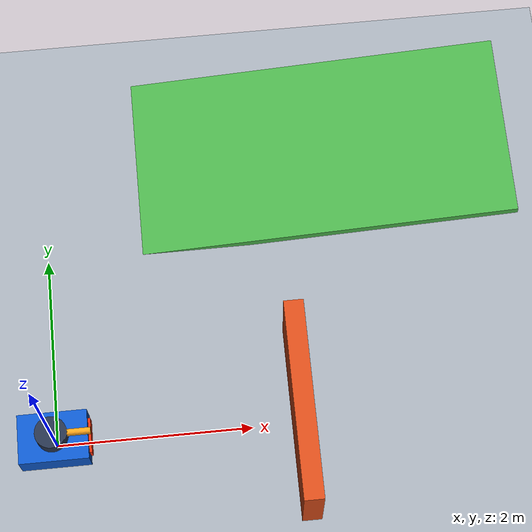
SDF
<?xml version='1.0' encoding='utf-8'?>
<sdf version="1.8">
  <world name="sentry_physics">
    <physics name="fixed_step" type="ignored">
      <max_step_size>.002</max_step_size>
      <real_time_factor>1</real_time_factor>
    </physics>
    <plugin filename="ignition-gazebo-physics-system" name="ignition::gazebo::systems::Physics" />
    <plugin filename="ignition-gazebo-user-commands-system" name="ignition::gazebo::systems::UserCommands" />
    <plugin filename="ignition-gazebo-scene-broadcaster-system" name="ignition::gazebo::systems::SceneBroadcaster" />
    <scene>
      <ambient>0.65 0.65 0.65 1</ambient>
      <background>0.82 0.86 0.9 1</background>
      <shadows>false</shadows>
    </scene>
    <light name="sun" type="directional">
      <pose>0 0 10 0 0 0</pose>
      <diffuse>0.8 0.8 0.8 1</diffuse>
      <specular>0.1 0.1 0.1 1</specular>
      <direction>-0.3 0.2 -1</direction>
      <cast_shadows>false</cast_shadows>
    </light>
    <gui fullscreen="false">
      <plugin filename="MinimalScene" name="3D View">
        <ignition-gui>
          <title>RM Sentry - Basic Navigation</title>
          <property type="bool" key="showTitleBar">false</property>
          <property type="string" key="state">docked</property>
        </ignition-gui>
        <engine>ogre2</engine>
        <scene>scene</scene>
        <ambient_light>0.65 0.65 0.65</ambient_light>
        <background_color>0.82 0.86 0.9</background_color>
        <camera_pose>4 -5 4.5 0 0.61 2.245</camera_pose>
      </plugin>
      <plugin filename="GzSceneManager" name="Scene Manager">
        <ignition-gui>
          <property type="bool" key="resizable">false</property>
          <property type="double" key="width">5</property>
          <property type="double" key="height">5</property>
          <property type="string" key="state">floating</property>
          <property type="bool" key="showTitleBar">false</property>
        </ignition-gui>
      </plugin>
      <plugin filename="InteractiveViewControl" name="View Control">
        <ignition-gui>
          <property type="bool" key="resizable">false</property>
          <property type="double" key="width">5</property>
          <property type="double" key="height">5</property>
          <property type="string" key="state">floating</property>
          <property type="bool" key="showTitleBar">false</property>
        </ignition-gui>
      </plugin>
      <plugin filename="WorldControl" name="World Control">
        <ignition-gui>
          <property type="bool" key="showTitleBar">false</property>
          <property type="string" key="state">floating</property>
          <property type="double" key="width">120</property>
          <property type="double" key="height">65</property>
          <property type="double" key="x">0</property>
          <property type="double" key="y">0</property>
        </ignition-gui>
        <play_pause>true</play_pause>
        <step>true</step>
        <start_paused>false</start_paused>
      </plugin>
      <plugin filename="WorldStats" name="World Stats">
        <ignition-gui>
          <property type="bool" key="showTitleBar">false</property>
          <property type="string" key="state">floating</property>
          <property type="double" key="width">280</property>
          <property type="double" key="height">110</property>
          <property type="double" key="x">0</property>
          <property type="double" key="y">70</property>
        </ignition-gui>
        <sim_time>true</sim_time>
        <real_time>true</real_time>
        <real_time_factor>true</real_time_factor>
        <iterations>true</iterations>
      </plugin>
    </gui>
    <gravity>0 0 -9.81</gravity>
    <plugin filename="ignition-gazebo-sensors-system" name="ignition::gazebo::systems::Sensors">
      <render_engine>ogre2</render_engine>
    </plugin>
    <model name="floor">
      <static>true</static>
      <pose>0 0 -.05 0 0 0</pose>
      <link name="body">
        <collision name="collision">
          <pose>0 0 0 0 0 0</pose>
          <geometry>
            <box>
              <size>20 20 .1</size>
            </box>
          </geometry>
          <surface>
            <friction>
              <ode>
                <mu>0.8</mu>
                <mu2>0.8</mu2>
              </ode>
            </friction>
          </surface>
        </collision>
        <visual name="visual">
          <geometry>
            <box>
              <size>20 20 .1</size>
            </box>
          </geometry>
          <material>
            <ambient>.65 .68 .72 1</ambient>
            <diffuse>.65 .68 .72 1</diffuse>
          </material>
        </visual>
      </link>
    </model>
    <model name="contact_wall">
      <static>true</static>
      <pose>2.5 0 .5 0 0 0</pose>
      <link name="body">
        <collision name="collision">
          <pose>0 0 0 0 0 0</pose>
          <geometry>
            <box>
              <size>.2 2 1</size>
            </box>
          </geometry>
          <surface>
            <friction>
              <ode>
                <mu>0.8</mu>
                <mu2>0.8</mu2>
              </ode>
            </friction>
          </surface>
        </collision>
        <visual name="visual">
          <geometry>
            <box>
              <size>.2 2 1</size>
            </box>
          </geometry>
          <material>
            <ambient>.85 .3 .1 1</ambient>
            <diffuse>.85 .3 .1 1</diffuse>
          </material>
        </visual>
      </link>
    </model>
    <model name="five_degree_ramp">
      <static>true</static>
      <pose>3 3 0.12450175059072904 0 -0.08726646259971647 0</pose>
      <link name="body">
        <collision name="collision">
          <pose>0 0 0 0 0 0</pose>
          <geometry>
            <box>
              <size>4 2 .1</size>
            </box>
          </geometry>
          <surface>
            <friction>
              <ode>
                <mu>0.8</mu>
                <mu2>0.8</mu2>
              </ode>
            </friction>
          </surface>
        </collision>
        <visual name="visual">
          <geometry>
            <box>
              <size>4 2 .1</size>
            </box>
          </geometry>
          <material>
            <ambient>.3 .7 .3 1</ambient>
            <diffuse>.3 .7 .3 1</diffuse>
          </material>
        </visual>
      </link>
    </model>
    <include>
      <uri>model://sentry_physical</uri>
      <name>sentry</name>
      <pose>0 0 .02 0 0 0</pose>
    </include>
  </world>
</sdf>

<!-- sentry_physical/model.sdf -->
<sdf version="1.8">
  <!-- Generic force-driven physical chassis with actual four-line lidar observations. -->
  <model name="sentry">
    <pose>0 0 0 0 0 0</pose>
    <link name="base_link">
      <gravity>true</gravity>
      <inertial>
        <mass>15</mass>
        <inertia>
          <ixx>.35</ixx>
          <iyy>.60</iyy>
          <izz>.65</izz>
        </inertia>
        <pose>0 0 .20 0 0 0</pose>
      </inertial>
      <visual name="body">
        <pose>0 0 0.25 0 0 0</pose>
        <geometry>
          <box>
            <size>0.7 0.5 0.3</size>
          </box>
        </geometry>
        <material>
          <ambient>0.05 0.3 0.65 1</ambient>
          <diffuse>0.05 0.35 0.8 1</diffuse>
        </material>
      </visual>
      <visual name="front">
        <pose>0.36 0 0.25 0 0 0</pose>
        <geometry>
          <box>
            <size>0.03 0.35 0.15</size>
          </box>
        </geometry>
        <material>
          <ambient>1 0.2 0.05 1</ambient>
          <diffuse>1 0.2 0.05 1</diffuse>
        </material>
      </visual>
      <visual name="turret">
        <pose>0 0 0.49 0 0 0</pose>
        <geometry>
          <cylinder>
            <radius>0.16</radius>
            <length>0.18</length>
          </cylinder>
        </geometry>
        <material>
          <ambient>0.1 0.14 0.2 1</ambient>
          <diffuse>0.15 0.2 0.3 1</diffuse>
        </material>
      </visual>
      <visual name="front_pointer">
        <pose>0.24 0 0.5 0 1.5707963 0</pose>
        <geometry>
          <cylinder>
            <radius>0.035</radius>
            <length>0.3</length>
          </cylinder>
        </geometry>
        <material>
          <ambient>1 0.65 0.1 1</ambient>
          <diffuse>1 0.65 0.1 1</diffuse>
        </material>
      </visual>
      <sensor name="lidar_sensor" type="gpu_lidar">
        <pose>0 0 0.7 0 0 0</pose>
        <topic>/sentry/lidar</topic>
        <update_rate>5</update_rate>
        <always_on>true</always_on>
        <visualize>false</visualize>
        <lidar>
          <scan>
            <horizontal>
              <samples>360</samples>
              <resolution>1</resolution>
              <min_angle>-3.141592653589793</min_angle>
              <max_angle>3.141592653589793</max_angle>
            </horizontal>
            <vertical>
              <samples>4</samples>
              <resolution>1</resolution>
              <min_angle>-0.1</min_angle>
              <max_angle>0.1</max_angle>
            </vertical>
          </scan>
          <range>
            <min>0.2</min>
            <max>10</max>
            <resolution>0.01</resolution>
          </range>
        </lidar>
      </sensor>
      <collision name="chassis">
        <pose>0 0 .25 0 0 0</pose>
        <geometry>
          <box>
            <size>.7 .5 .3</size>
          </box>
        </geometry>
        <surface>
          <friction>
            <ode>
              <mu>0.02</mu>
              <mu2>0.02</mu2>
            </ode>
          </friction>
        </surface>
      </collision>
      <collision name="support_-0.25_-0.18">
        <pose>-0.25 -0.18 .06 0 0 0</pose>
        <geometry>
          <sphere>
            <radius>.06</radius>
          </sphere>
        </geometry>
        <surface>
          <friction>
            <ode>
              <mu>0.02</mu>
              <mu2>0.02</mu2>
            </ode>
          </friction>
        </surface>
      </collision>
      <visual name="support_-0.25_-0.18">
        <pose>-0.25 -0.18 .06 0 0 0</pose>
        <geometry>
          <sphere>
            <radius>.06</radius>
          </sphere>
        </geometry>
      </visual>
      <collision name="support_-0.25_0.18">
        <pose>-0.25 0.18 .06 0 0 0</pose>
        <geometry>
          <sphere>
            <radius>.06</radius>
          </sphere>
        </geometry>
        <surface>
          <friction>
            <ode>
              <mu>0.02</mu>
              <mu2>0.02</mu2>
            </ode>
          </friction>
        </surface>
      </collision>
      <visual name="support_-0.25_0.18">
        <pose>-0.25 0.18 .06 0 0 0</pose>
        <geometry>
          <sphere>
            <radius>.06</radius>
          </sphere>
        </geometry>
      </visual>
      <collision name="support_0.25_-0.18">
        <pose>0.25 -0.18 .06 0 0 0</pose>
        <geometry>
          <sphere>
            <radius>.06</radius>
          </sphere>
        </geometry>
        <surface>
          <friction>
            <ode>
              <mu>0.02</mu>
              <mu2>0.02</mu2>
            </ode>
          </friction>
        </surface>
      </collision>
      <visual name="support_0.25_-0.18">
        <pose>0.25 -0.18 .06 0 0 0</pose>
        <geometry>
          <sphere>
            <radius>.06</radius>
          </sphere>
        </geometry>
      </visual>
      <collision name="support_0.25_0.18">
        <pose>0.25 0.18 .06 0 0 0</pose>
        <geometry>
          <sphere>
            <radius>.06</radius>
          </sphere>
        </geometry>
        <surface>
          <friction>
            <ode>
              <mu>0.02</mu>
              <mu2>0.02</mu2>
            </ode>
          </friction>
        </surface>
      </collision>
      <visual name="support_0.25_0.18">
        <pose>0.25 0.18 .06 0 0 0</pose>
        <geometry>
          <sphere>
            <radius>.06</radius>
          </sphere>
        </geometry>
      </visual>
    </link>
    <plugin filename="ignition-gazebo-odometry-publisher-system" name="ignition::gazebo::systems::OdometryPublisher">
      <odom_frame>odom</odom_frame>
      <robot_base_frame>base_link</robot_base_frame>
      <dimensions>3</dimensions>
      <odom_publish_frequency>50</odom_publish_frequency>
      <odom_topic>/model/sentry/odometry</odom_topic>
    </plugin>
    <plugin filename="sentry_force_drive" name="sentry_gazebo::ForceDrive">
      <mass>15</mass>
      <yaw_inertia>.65</yaw_inertia>
      <max_force>30</max_force>
      <max_torque>2</max_torque>
    </plugin>
  </model>
</sdf>
